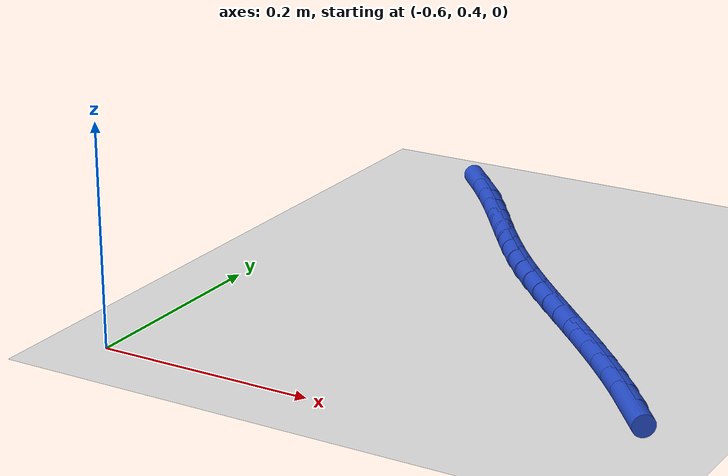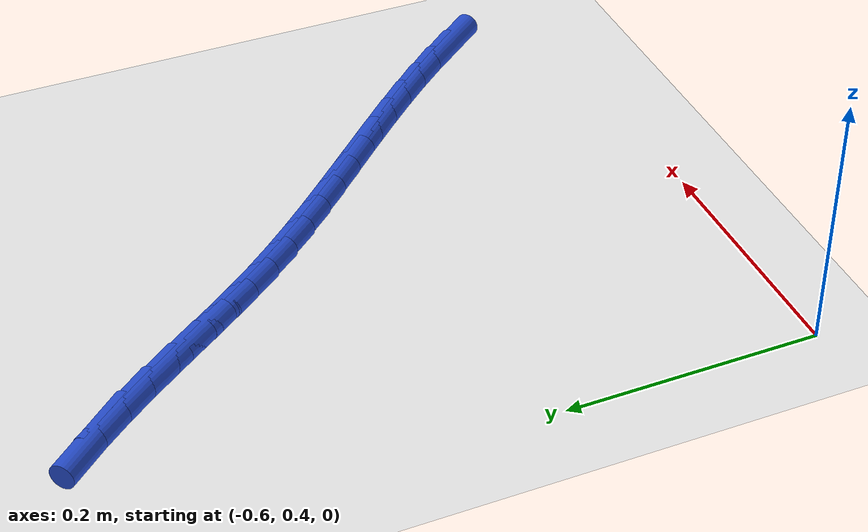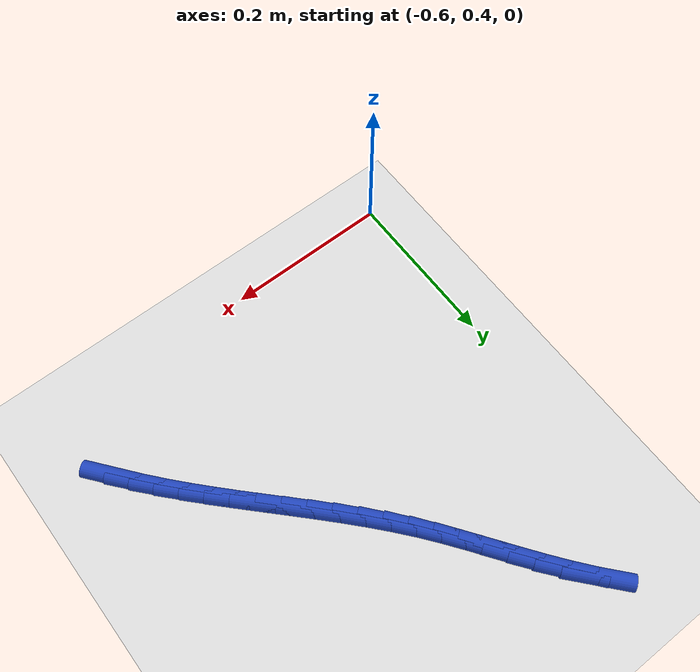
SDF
<sdf version="1.6">
 <world name="default">
  <model name="ground_plane">
   <static>1</static>
   <link name="link">
    <collision name="collision">
     <geometry><plane><normal>0 0 1</normal><size>100 100</size></plane></geometry>
     <surface><friction><ode><mu>100</mu><mu2>50</mu2></ode></friction></surface>
    </collision>
    <visual name="visual">
     <cast_shadows>0</cast_shadows>
     <geometry><plane><normal>0 0 1</normal><size>100 100</size></plane></geometry>
     <material>
      <script><uri>file://media/materials/scripts/gazebo.material</uri><name>Gazebo/WhiteGlow</name></script>
     </material>
    </visual>
   </link>
  </model>
  <model name="line">
   <link name="link_19">
    <pose>-0.16250202269144373 0.5008632435001891 0.01 0 1.57 -0.8962617910761358</pose>
    <collision name="collision">
     <geometry><cylinder><radius>0.01</radius><length>0.08</length></cylinder></geometry>
    </collision>
    <visual name="visual">
     <material>
      <script><name>Gazebo/Blue</name><uri>file://media/materials/scripts/gazebo.material</uri></script>
     </material>
     <geometry><cylinder><radius>0.01</radius><length>0.08</length></cylinder></geometry>
    </visual>
   </link>
   <link name="link_20">
    <pose>-0.18025811793550345 0.5230677564738471 0.01 0 1.57 -0.8653883867662681</pose>
    <collision name="collision">
     <geometry><cylinder><radius>0.01</radius><length>0.08</length></cylinder></geometry>
    </collision>
    <visual name="visual">
     <material>
      <script><name>Gazebo/Blue</name><uri>file://media/materials/scripts/gazebo.material</uri></script>
     </material>
     <geometry><cylinder><radius>0.01</radius><length>0.08</length></cylinder></geometry>
    </visual>
   </link>
   <link name="link_21">
    <pose>-0.19866852991135206 0.5446869959581031 0.01 0 1.57 -0.8391510652437308</pose>
    <collision name="collision">
     <geometry><cylinder><radius>0.01</radius><length>0.08</length></cylinder></geometry>
    </collision>
    <visual name="visual">
     <material>
      <script><name>Gazebo/Blue</name><uri>file://media/materials/scripts/gazebo.material</uri></script>
     </material>
     <geometry><cylinder><radius>0.01</radius><length>0.08</length></cylinder></geometry>
    </visual>
   </link>
   <link name="link_22">
    <pose>-0.21762143214830776 0.5657953852706543 0.01 0 1.57 -0.8188360638029999</pose>
    <collision name="collision">
     <geometry><cylinder><radius>0.01</radius><length>0.08</length></cylinder></geometry>
    </collision>
    <visual name="visual">
     <material>
      <script><name>Gazebo/Blue</name><uri>file://media/materials/scripts/gazebo.material</uri></script>
     </material>
     <geometry><cylinder><radius>0.01</radius><length>0.08</length></cylinder></geometry>
    </visual>
   </link>
   <link name="link_23">
    <pose>-0.2369846752825213 0.586498875385052 0.01 0 1.57 -0.8044536521222202</pose>
    <collision name="collision">
     <geometry><cylinder><radius>0.01</radius><length>0.08</length></cylinder></geometry>
    </collision>
    <visual name="visual">
     <material>
      <script><name>Gazebo/Blue</name><uri>file://media/materials/scripts/gazebo.material</uri></script>
     </material>
     <geometry><cylinder><radius>0.01</radius><length>0.08</length></cylinder></geometry>
    </visual>
   </link>
   <link name="link_24">
    <pose>-0.25662607814597316 0.6069034666138325 0.01 0 1.57 -0.7960057918467021</pose>
    <collision name="collision">
     <geometry><cylinder><radius>0.01</radius><length>0.08</length></cylinder></geometry>
    </collision>
    <visual name="visual">
     <material>
      <script><name>Gazebo/Blue</name><uri>file://media/materials/scripts/gazebo.material</uri></script>
     </material>
     <geometry><cylinder><radius>0.01</radius><length>0.08</length></cylinder></geometry>
    </visual>
   </link>
   <link name="link_25">
    <pose>-0.2764134595706434 0.6271151592695328 0.01 0 1.57 -0.793503375734931</pose>
    <collision name="collision">
     <geometry><cylinder><radius>0.01</radius><length>0.08</length></cylinder></geometry>
    </collision>
    <visual name="visual">
     <material>
      <script><name>Gazebo/Blue</name><uri>file://media/materials/scripts/gazebo.material</uri></script>
     </material>
     <geometry><cylinder><radius>0.01</radius><length>0.08</length></cylinder></geometry>
    </visual>
   </link>
   <link name="link_26">
    <pose>-0.29621463838851253 0.6472399536646894 0.01 0 1.57 -0.7969753440775542</pose>
    <collision name="collision">
     <geometry><cylinder><radius>0.01</radius><length>0.08</length></cylinder></geometry>
    </collision>
    <visual name="visual">
     <material>
      <script><name>Gazebo/Blue</name><uri>file://media/materials/scripts/gazebo.material</uri></script>
     </material>
     <geometry><cylinder><radius>0.01</radius><length>0.08</length></cylinder></geometry>
    </visual>
   </link>
   <link name="link_27">
    <pose>-0.31589743343156085 0.6673838501118394 0.01 0 1.57 -0.8064716883965122</pose>
    <collision name="collision">
     <geometry><cylinder><radius>0.01</radius><length>0.08</length></cylinder></geometry>
    </collision>
    <visual name="visual">
     <material>
      <script><name>Gazebo/Blue</name><uri>file://media/materials/scripts/gazebo.material</uri></script>
     </material>
     <geometry><cylinder><radius>0.01</radius><length>0.08</length></cylinder></geometry>
    </visual>
   </link>
   <link name="link_28">
    <pose>-0.3353296635317688 0.6876528489235193 0.01 0 1.57 -0.8220601788648326</pose>
    <collision name="collision">
     <geometry><cylinder><radius>0.01</radius><length>0.08</length></cylinder></geometry>
    </collision>
    <visual name="visual">
     <material>
      <script><name>Gazebo/Blue</name><uri>file://media/materials/scripts/gazebo.material</uri></script>
     </material>
     <geometry><cylinder><radius>0.01</radius><length>0.08</length></cylinder></geometry>
    </visual>
   </link>
   <link name="link_29">
    <pose>-0.3543791475211166 0.7081529504122661 0.01 0 1.57 -0.8438163722057962</pose>
    <collision name="collision">
     <geometry><cylinder><radius>0.01</radius><length>0.08</length></cylinder></geometry>
    </collision>
    <visual name="visual">
     <material>
      <script><name>Gazebo/Blue</name><uri>file://media/materials/scripts/gazebo.material</uri></script>
     </material>
     <geometry><cylinder><radius>0.01</radius><length>0.08</length></cylinder></geometry>
    </visual>
   </link>
   <link name="link_30">
    <pose>-0.3729137042315846 0.7289901548906161 0.01 0 1.57 -0.8718062589909729</pose>
    <collision name="collision">
     <geometry><cylinder><radius>0.01</radius><length>0.08</length></cylinder></geometry>
    </collision>
    <visual name="visual">
     <material>
      <script><name>Gazebo/Blue</name><uri>file://media/materials/scripts/gazebo.material</uri></script>
     </material>
     <geometry><cylinder><radius>0.01</radius><length>0.08</length></cylinder></geometry>
    </visual>
   </link>
   <link name="link_31">
    <pose>-0.39080115249515324 0.7502704626711066 0.01 0 1.57 -0.9043122076625909</pose>
    <collision name="collision">
     <geometry><cylinder><radius>0.01</radius><length>0.08</length></cylinder></geometry>
    </collision>
    <visual name="visual">
     <material>
      <script><name>Gazebo/Blue</name><uri>file://media/materials/scripts/gazebo.material</uri></script>
     </material>
     <geometry><cylinder><radius>0.01</radius><length>0.08</length></cylinder></geometry>
    </visual>
   </link>
   <link name="link_32">
    <pose>-0.40795145854143117 0.7720750059246441 0.01 0 1.57 -0.9299000270597352</pose>
    <collision name="collision">
     <geometry><cylinder><radius>0.01</radius><length>0.08</length></cylinder></geometry>
    </collision>
    <visual name="visual">
     <material>
      <script><name>Gazebo/Blue</name><uri>file://media/materials/scripts/gazebo.material</uri></script>
     </material>
     <geometry><cylinder><radius>0.01</radius><length>0.08</length></cylinder></geometry>
    </visual>
   </link>
   <link name="link_33">
    <pose>-0.4245476706668413 0.7943237907764882 0.01 0 1.57 -0.9438922300333664</pose>
    <collision name="collision">
     <geometry><cylinder><radius>0.01</radius><length>0.08</length></cylinder></geometry>
    </collision>
    <visual name="visual">
     <material>
      <script><name>Gazebo/Blue</name><uri>file://media/materials/scripts/gazebo.material</uri></script>
     </material>
     <geometry><cylinder><radius>0.01</radius><length>0.08</length></cylinder></geometry>
    </visual>
   </link>
   <link name="link_34">
    <pose>-0.4408816676187621 0.8168726103465814 0.01 0 1.57 -0.9462885794864765</pose>
    <collision name="collision">
     <geometry><cylinder><radius>0.01</radius><length>0.08</length></cylinder></geometry>
    </collision>
    <visual name="visual">
     <material>
      <script><name>Gazebo/Blue</name><uri>file://media/materials/scripts/gazebo.material</uri></script>
     </material>
     <geometry><cylinder><radius>0.01</radius><length>0.08</length></cylinder></geometry>
    </visual>
   </link>
   <link name="link_35">
    <pose>-0.45724560960467747 0.8395770916855434 0.01 0 1.57 -0.9372516686920985</pose>
    <collision name="collision">
     <geometry><cylinder><radius>0.01</radius><length>0.08</length></cylinder></geometry>
    </collision>
    <visual name="visual">
     <material>
      <script><name>Gazebo/Blue</name><uri>file://media/materials/scripts/gazebo.material</uri></script>
     </material>
     <geometry><cylinder><radius>0.01</radius><length>0.08</length></cylinder></geometry>
    </visual>
   </link>
   <link name="link_36">
    <pose>-0.47393165683207095 0.862292861843994 0.01 0 1.57 -0.9170784924777136</pose>
    <collision name="collision">
     <geometry><cylinder><radius>0.01</radius><length>0.08</length></cylinder></geometry>
    </collision>
    <visual name="visual">
     <material>
      <script><name>Gazebo/Blue</name><uri>file://media/materials/scripts/gazebo.material</uri></script>
     </material>
     <geometry><cylinder><radius>0.01</radius><length>0.08</length></cylinder></geometry>
    </visual>
   </link>
   <link name="link_37">
    <pose>-0.49123196950842685 0.8848755478725536 0.01 0 1.57 -0.8862225286952782</pose>
    <collision name="collision">
     <geometry><cylinder><radius>0.01</radius><length>0.08</length></cylinder></geometry>
    </collision>
    <visual name="visual">
     <material>
      <script><name>Gazebo/Blue</name><uri>file://media/materials/scripts/gazebo.material</uri></script>
     </material>
     <geometry><cylinder><radius>0.01</radius><length>0.08</length></cylinder></geometry>
    </visual>
   </link>
   <link name="link_38">
    <pose>-0.5094387078412288 0.9071807768218415 0.01 0 1.57 -0.8458173345315733</pose>
    <collision name="collision">
     <geometry><cylinder><radius>0.01</radius><length>0.08</length></cylinder></geometry>
    </collision>
    <visual name="visual">
     <material>
      <script><name>Gazebo/Blue</name><uri>file://media/materials/scripts/gazebo.material</uri></script>
     </material>
     <geometry><cylinder><radius>0.01</radius><length>0.08</length></cylinder></geometry>
    </visual>
   </link>
  </model>
 </world>
</sdf>
